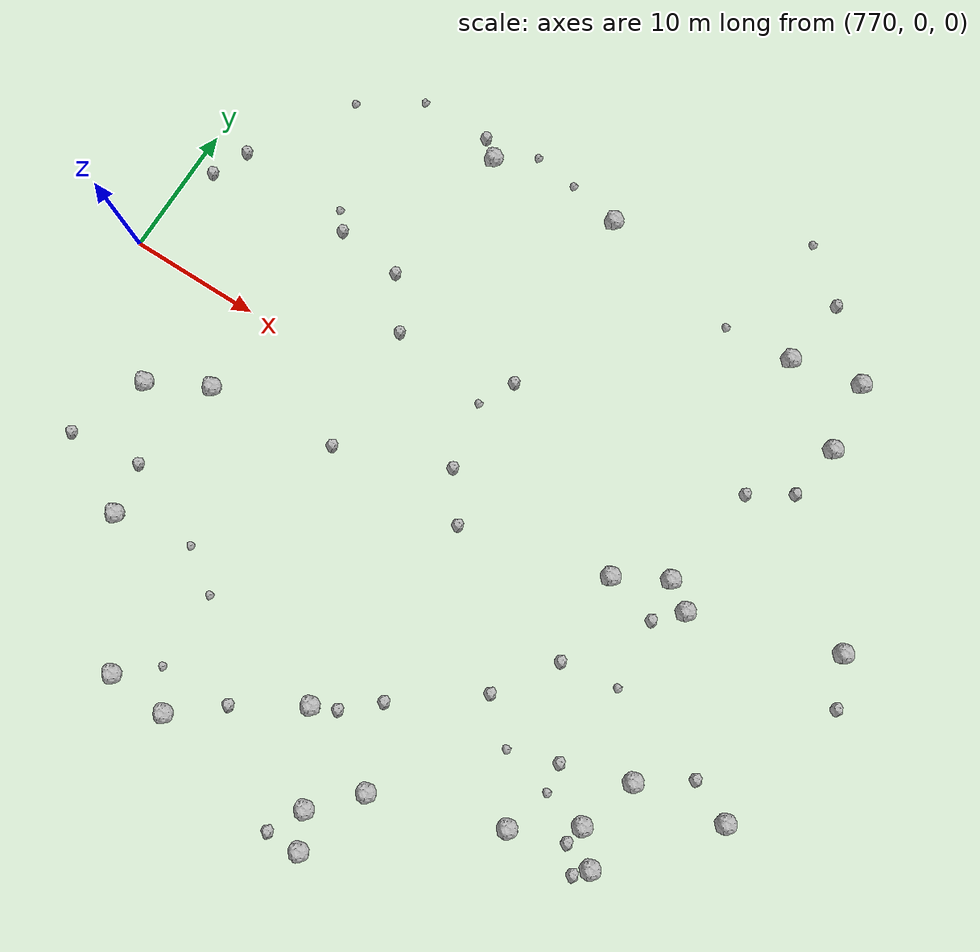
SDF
<sdf version="1.6">
 <world name="default">
  <include><uri>model://sun</uri></include>
  <model name="rock1_20_4">
   <include><uri>model://rock1</uri><pose>814.8854293118778 -20.60869691666382 0.5 0 0 0</pose></include>
  </model>
  <model name="rock1_20_5">
   <include><uri>model://rock1</uri><pose>780.4686012436161 -17.34501604270526 0.5 0 0 0</pose></include>
  </model>
  <model name="rock1_20_6">
   <include><uri>model://rock1</uri><pose>820.4547440405181 -13.593130934675596 0.5 0 0 0</pose></include>
  </model>
  <model name="rock1_20_7">
   <include><uri>model://rock1</uri><pose>798.8611944103575 20.09721142857162 0.5 0 0 0</pose></include>
  </model>
  <model name="rock1_20_8">
   <include><uri>model://rock1</uri><pose>805.708366311863 -23.693965984921228 0.5 0 0 0</pose></include>
  </model>
  <model name="rock1_20_9">
   <include><uri>model://rock1</uri><pose>799.3894226697486 -20.974938713104734 0.5 0 0 0</pose></include>
  </model>
  <model name="rock1_20_10">
   <include><uri>model://rock1</uri><pose>803.9972224343977 -29.199510789656973 0.5 0 0 0</pose></include>
  </model>
  <model name="rock1_20_11">
   <include><uri>model://rock1</uri><pose>815.0659176459036 17.802187397263296 0.5 0 0 0</pose></include>
  </model>
  <model name="rock1_20_12">
   <include><uri>model://rock1</uri><pose>780.9739124330414 -6.202284786884903 0.5 0 0 0</pose></include>
  </model>
  <model name="rock1_20_13">
   <include><uri>model://rock1</uri><pose>812.1147033907878 -2.565374921257572 0.5 0 0 0</pose></include>
  </model>
  <model name="rock1_20_14">
   <include><uri>model://rock1</uri><pose>828.2878897348686 1.378725695446164 0.5 0 0 0</pose></include>
  </model>
  <model name="rock1_20_15">
   <include><uri>model://rock1</uri><pose>786.7948243675866 -26.42738625370051 0.5 0 0 0</pose></include>
  </model>
  <model name="rock1_20_16">
   <include><uri>model://rock1</uri><pose>788.6803840952639 19.58956334561529 0.5 0 0 0</pose></include>
  </model>
  <model name="rock1_20_17">
   <include><uri>model://rock1</uri><pose>776.6724156298475 -8.459852682053572 0.5 0 0 0</pose></include>
  </model>
  <model name="rock1_20_18">
   <include><uri>model://rock1</uri><pose>791.2690463042252 -26.698333280215262 0.5 0 0 0</pose></include>
  </model>
  <model name="rock1_20_19">
   <include><uri>model://rock1</uri><pose>819.0278610742811 -17.82600273853079 0.5 0 0 0</pose></include>
  </model>
  <model name="rock1_20_20">
   <include><uri>model://rock1</uri><pose>820.8739269991005 -19.879855763435163 0.5 0 0 0</pose></include>
  </model>
  <model name="rock1_20_21">
   <include><uri>model://rock1</uri><pose>815.7644851129146 -0.5260505004064058 0.5 0 0 0</pose></include>
  </model>
  <model name="rock1_20_22">
   <include><uri>model://rock1</uri><pose>827.0029730633906 -12.600495114133384 0.5 0 0 0</pose></include>
  </model>
  <model name="rock1_20_23">
   <include><uri>model://rock1</uri><pose>820.8482128831286 13.550670504819323 0.5 0 0 0</pose></include>
  </model>
  <model name="rock1_20_24">
   <include><uri>model://rock1</uri><pose>817.7326355247573 -1.9040476703322575 0.5 0 0 0</pose></include>
  </model>
  <model name="rock1_20_25">
   <include><uri>model://rock1</uri><pose>820.2771768740207 18.83732485885153 0.5 0 0 0</pose></include>
  </model>
  <model name="rock1_20_26">
   <include><uri>model://rock1</uri><pose>802.8142894113972 -26.795711076786098 0.5 0 0 0</pose></include>
  </model>
  <model name="rock2_20_0">
   <include><uri>model://rock2</uri><pose>815.9338643868765 23.170048922107377 0.3 0 0 0</pose></include>
  </model>
  <model name="rock2_20_1">
   <include><uri>model://rock2</uri><pose>801.1006311866711 -20.207446617889744 0.3 0 0 0</pose></include>
  </model>
  <model name="rock2_20_2">
   <include><uri>model://rock2</uri><pose>809.268198705838 -13.761592598027931 0.3 0 0 0</pose></include>
  </model>
  <model name="rock2_20_3">
   <include><uri>model://rock2</uri><pose>771.5341022277238 7.448049749001967 0.3 0 0 0</pose></include>
  </model>
  <model name="rock2_20_4">
   <include><uri>model://rock2</uri><pose>794.6314243103704 -23.916977012014808 0.3 0 0 0</pose></include>
  </model>
  <model name="rock2_20_5">
   <include><uri>model://rock2</uri><pose>823.9302426481553 -11.210215237314749 0.3 0 0 0</pose></include>
  </model>
  <model name="rock2_20_6">
   <include><uri>model://rock2</uri><pose>812.2080426585514 -9.386712523162785 0.3 0 0 0</pose></include>
  </model>
  <model name="rock2_20_7">
   <include><uri>model://rock2</uri><pose>782.280857104433 8.776864263098446 0.3 0 0 0</pose></include>
  </model>
  <model name="rock2_20_8">
   <include><uri>model://rock2</uri><pose>798.7365608121436 -1.9134513241453703 0.3 0 0 0</pose></include>
  </model>
  <model name="rock2_20_9">
   <include><uri>model://rock2</uri><pose>787.3071608328614 20.739039530045723 0.3 0 0 0</pose></include>
  </model>
  <model name="rock2_20_10">
   <include><uri>model://rock2</uri><pose>799.1169481585785 5.687427660424575 0.3 0 0 0</pose></include>
  </model>
  <model name="rock2_20_11">
   <include><uri>model://rock2</uri><pose>817.1741466190842 7.483740258546106 0.3 0 0 0</pose></include>
  </model>
  <model name="rock2_20_12">
   <include><uri>model://rock2</uri><pose>772.7392385853459 10.18017166714926 0.3 0 0 0</pose></include>
  </model>
  <model name="rock2_20_13">
   <include><uri>model://rock2</uri><pose>774.3614088488954 -14.216443306526187 0.3 0 0 0</pose></include>
  </model>
  <model name="rock2_20_14">
   <include><uri>model://rock2</uri><pose>820.154141871859 9.382583936962625 0.3 0 0 0</pose></include>
  </model>
  <model name="rock2_20_15">
   <include><uri>model://rock2</uri><pose>803.464806258197 -18.09696838379911 0.3 0 0 0</pose></include>
  </model>
  <model name="rock2_20_16">
   <include><uri>model://rock2</uri><pose>801.5105144293874 -29.27452630775216 0.3 0 0 0</pose></include>
  </model>
  <model name="rock2_20_17">
   <include><uri>model://rock2</uri><pose>829.6936721178258 -2.1107517768835073 0.3 0 0 0</pose></include>
  </model>
  <model name="rock2_20_18">
   <include><uri>model://rock2</uri><pose>779.7460121948739 -13.566574522549839 0.3 0 0 0</pose></include>
  </model>
  <model name="rock2_20_19">
   <include><uri>model://rock2</uri><pose>815.6321490666563 -15.16583009449463 0.3 0 0 0</pose></include>
  </model>
  <model name="rock2_20_20">
   <include><uri>model://rock2</uri><pose>790.0886424666708 4.4741477993459 0.3 0 0 0</pose></include>
  </model>
  <model name="rock2_20_21">
   <include><uri>model://rock2</uri><pose>801.211339903455 -5.189810860537364 0.3 0 0 0</pose></include>
  </model>
  <model name="rock2_20_22">
   <include><uri>model://rock2</uri><pose>787.3666050139067 8.106327475517496 0.3 0 0 0</pose></include>
  </model>
  <model name="rock2_20_23">
   <include><uri>model://rock2</uri><pose>820.069897550115 -20.812942674839334 0.3 0 0 0</pose></include>
  </model>
  <model name="rock2_20_24">
   <include><uri>model://rock2</uri><pose>816.0435396404065 -3.662800908733736 0.3 0 0 0</pose></include>
  </model>
  <model name="rock2_20_25">
   <include><uri>model://rock2</uri><pose>790.5974195595948 -5.140686907834684 0.3 0 0 0</pose></include>
  </model>
  <model name="rock2_20_26">
   <include><uri>model://rock2</uri><pose>818.7238879304862 -19.284226305227378 0.3 0 0 0</pose></include>
  </model>
  <model name="rock3_20_0">
   <include><uri>model://rock3</uri><pose>786.6153627575308 -26.758855821702255 0.2 0 0 0</pose></include>
  </model>
  <model name="rock3_20_1">
   <include><uri>model://rock3</uri><pose>794.8485100659303 20.94250116115694 0.2 0 0 0</pose></include>
  </model>
  <model name="rock3_20_2">
   <include><uri>model://rock3</uri><pose>781.8162192823975 20.762742385384755 0.2 0 0 0</pose></include>
  </model>
  <model name="rock3_20_3">
   <include><uri>model://rock3</uri><pose>791.443259337628 21.482553952125173 0.2 0 0 0</pose></include>
  </model>
  <model name="rock3_20_4">
   <include><uri>model://rock3</uri><pose>812.131430319376 -16.31957856808657 0.2 0 0 0</pose></include>
  </model>
  <model name="rock3_20_5">
   <include><uri>model://rock3</uri><pose>777.3885454014213 17.87481284984515 0.2 0 0 0</pose></include>
  </model>
  <model name="rock3_20_6">
   <include><uri>model://rock3</uri><pose>816.4037404568959 -8.837486017001655 0.2 0 0 0</pose></include>
  </model>
  <model name="rock3_20_7">
   <include><uri>model://rock3</uri><pose>789.2726707313938 -18.517187142145843 0.2 0 0 0</pose></include>
  </model>
  <model name="rock3_20_8">
   <include><uri>model://rock3</uri><pose>786.1822533110783 -16.39947324941626 0.2 0 0 0</pose></include>
  </model>
  <model name="rock3_20_9">
   <include><uri>model://rock3</uri><pose>815.913902501712 -17.267369222322333 0.2 0 0 0</pose></include>
  </model>
  <model name="rock3_20_10">
   <include><uri>model://rock3</uri><pose>789.3248325904102 -24.21546204990345 0.2 0 0 0</pose></include>
  </model>
  <model name="rock3_20_11">
   <include><uri>model://rock3</uri><pose>797.7514912701107 3.0220367427884725 0.2 0 0 0</pose></include>
  </model>
  <model name="rock3_20_12">
   <include><uri>model://rock3</uri><pose>812.1831679915067 26.39690415219676 0.2 0 0 0</pose></include>
  </model>
  <model name="rock3_20_13">
   <include><uri>model://rock3</uri><pose>809.9089026127508 17.44012190615419 0.2 0 0 0</pose></include>
  </model>
  <model name="rock3_20_14">
   <include><uri>model://rock3</uri><pose>781.1584655228509 10.042589638055091 0.2 0 0 0</pose></include>
  </model>
 </world>
</sdf>
